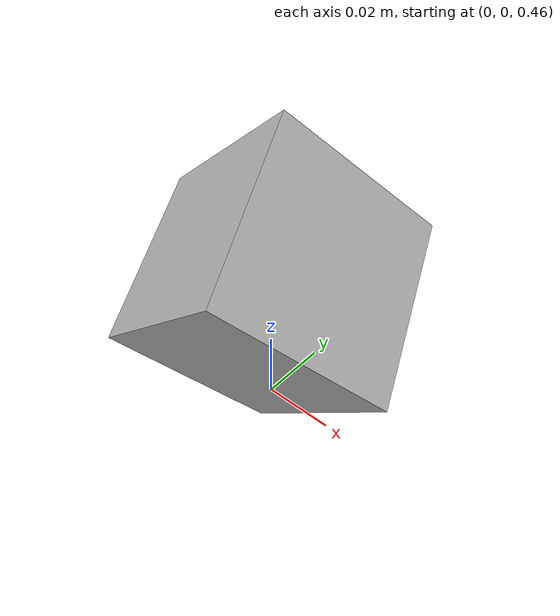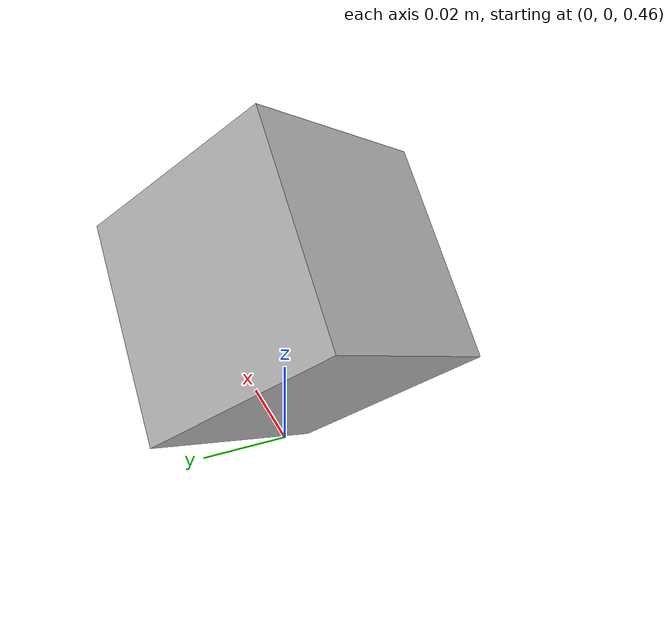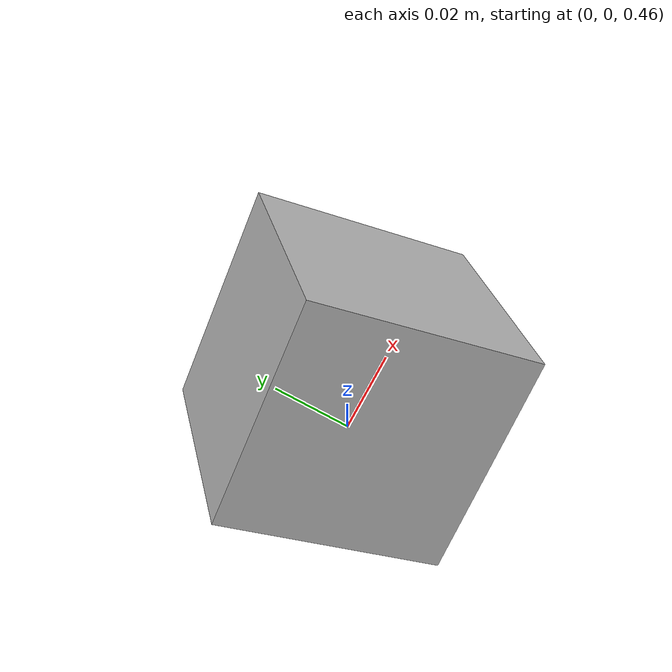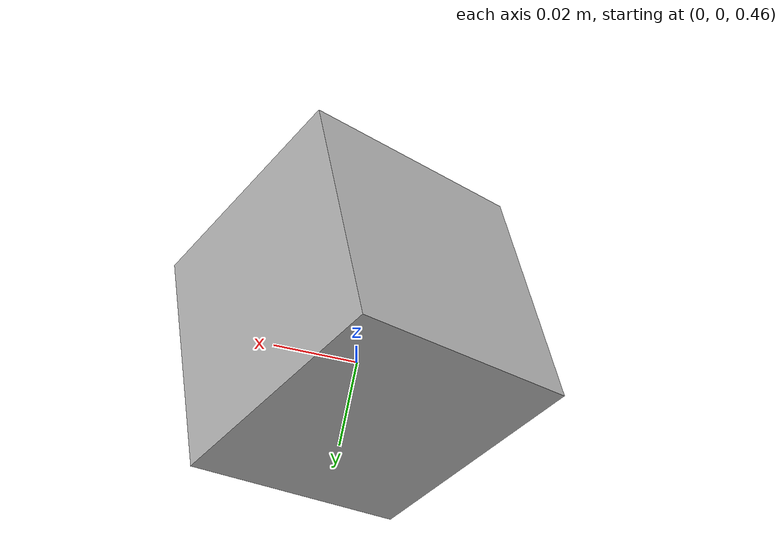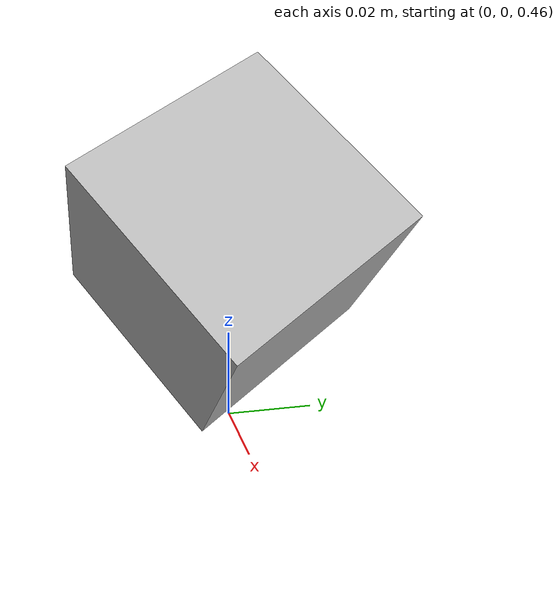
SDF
<?xml version="1.0"?>
<sdf version="1.9">
  <world name="cite_probe">

    <physics name="default" type="ignored">
      <max_step_size>0.001</max_step_size>
      <real_time_factor>1</real_time_factor>
    </physics>

    <plugin filename="gz-sim-physics-system" name="gz::sim::systems::Physics"/>
    <plugin filename="gz-sim-scene-broadcaster-system"
            name="gz::sim::systems::SceneBroadcaster"/>

    <!-- Static, so it never appears in a dynamic_pose/info snapshot and cannot
         be mistaken for the body. -->
    <model name="ground_plane">
      <static>true</static>
      <link name="link">
        <collision name="collision">
          <geometry>
            <plane><normal>0 0 1</normal><size>100 100</size></plane>
          </geometry>
          <surface>
            <friction><ode><mu>1.0</mu><mu2>1.0</mu2></ode></friction>
          </surface>
        </collision>
      </link>
    </model>

    <model name="probe_body">
      <pose>1e-06 0.0 0.5 0.6 0.7 0.8</pose>
      <link name="link">
        <inertial>
          <mass>0.2</mass>
          <inertia>
            <ixx>8.333333333333336e-05</ixx><iyy>8.333333333333336e-05</iyy><izz>8.333333333333336e-05</izz>
            <ixy>0</ixy><ixz>0</ixz><iyz>0</iyz>
          </inertia>
        </inertial>
        <collision name="collision">
          <geometry><box><size>0.05 0.05 0.05</size></box></geometry>
          <surface>
            <friction><ode><mu>1.0</mu><mu2>1.0</mu2></ode></friction>
          </surface>
        </collision>
        <visual name="visual">
          <geometry><box><size>0.05 0.05 0.05</size></box></geometry>
        </visual>
      </link>
    </model>

  </world>
</sdf>
